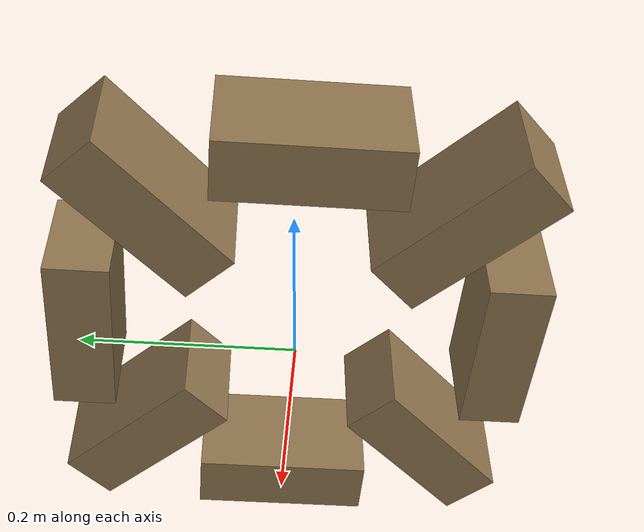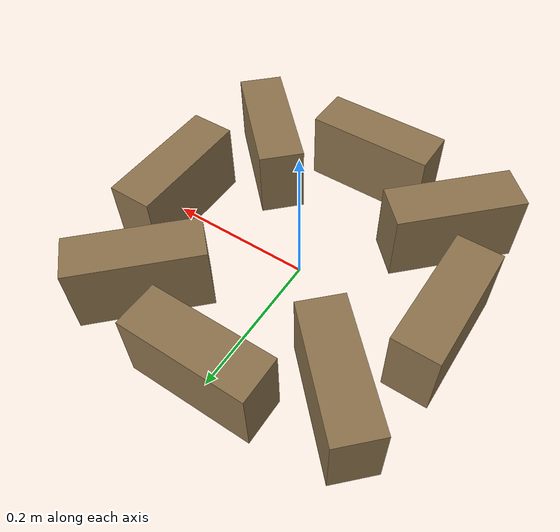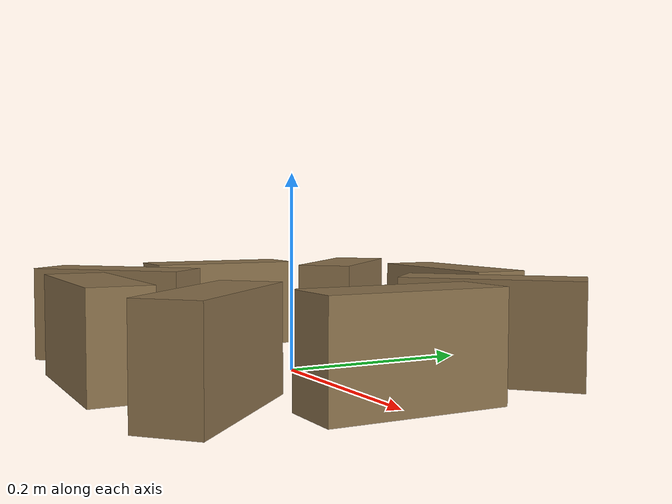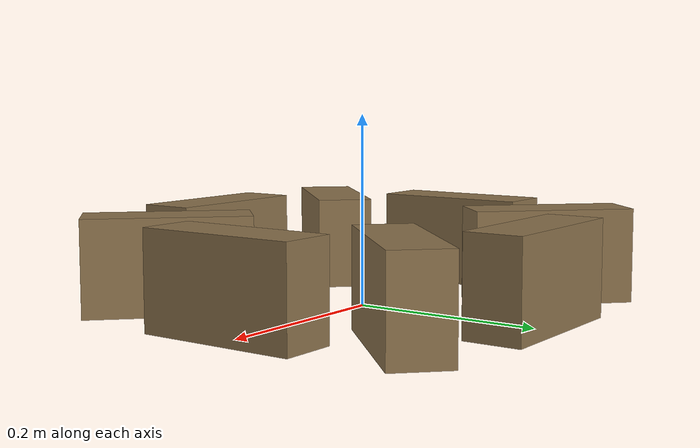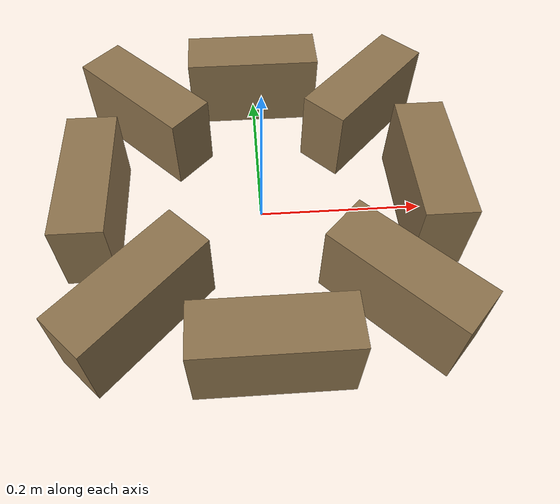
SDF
<?xml version="1.0" ?>
<sdf version="1.8">
  <model name="crater">
    <static>true</static>

    <!-- Rim geometry: 8 boxes arranged in an octagon.
         Radius ~0.20m center-to-segment, box length ~0.17m to close gaps.
         Each segment: 0.17 x 0.06 x 0.10 (length x thickness x height) -->

    <!-- N  (0 deg) -->
    <link name="rim_0">
      <pose>0 0.20 0.05 0 0 0</pose>
      <visual name="v"><geometry><box><size>0.17 0.06 0.10</size></box></geometry>
        <material><ambient>0.50 0.42 0.28 1</ambient><diffuse>0.55 0.45 0.30 1</diffuse></material>
      </visual>
      <collision name="c"><geometry><box><size>0.17 0.06 0.10</size></box></geometry>
        <surface><friction><ode><mu>0.9</mu><mu2>0.9</mu2></ode></friction></surface>
      </collision>
    </link>

    <!-- NE (45 deg) -->
    <link name="rim_1">
      <pose>0.1414 0.1414 0.05 0 0 0.7854</pose>
      <visual name="v"><geometry><box><size>0.17 0.06 0.10</size></box></geometry>
        <material><ambient>0.50 0.42 0.28 1</ambient><diffuse>0.55 0.45 0.30 1</diffuse></material>
      </visual>
      <collision name="c"><geometry><box><size>0.17 0.06 0.10</size></box></geometry>
        <surface><friction><ode><mu>0.9</mu><mu2>0.9</mu2></ode></friction></surface>
      </collision>
    </link>

    <!-- E  (90 deg) -->
    <link name="rim_2">
      <pose>0.20 0 0.05 0 0 1.5708</pose>
      <visual name="v"><geometry><box><size>0.17 0.06 0.10</size></box></geometry>
        <material><ambient>0.50 0.42 0.28 1</ambient><diffuse>0.55 0.45 0.30 1</diffuse></material>
      </visual>
      <collision name="c"><geometry><box><size>0.17 0.06 0.10</size></box></geometry>
        <surface><friction><ode><mu>0.9</mu><mu2>0.9</mu2></ode></friction></surface>
      </collision>
    </link>

    <!-- SE (135 deg) -->
    <link name="rim_3">
      <pose>0.1414 -0.1414 0.05 0 0 2.3562</pose>
      <visual name="v"><geometry><box><size>0.17 0.06 0.10</size></box></geometry>
        <material><ambient>0.50 0.42 0.28 1</ambient><diffuse>0.55 0.45 0.30 1</diffuse></material>
      </visual>
      <collision name="c"><geometry><box><size>0.17 0.06 0.10</size></box></geometry>
        <surface><friction><ode><mu>0.9</mu><mu2>0.9</mu2></ode></friction></surface>
      </collision>
    </link>

    <!-- S  (180 deg) -->
    <link name="rim_4">
      <pose>0 -0.20 0.05 0 0 0</pose>
      <visual name="v"><geometry><box><size>0.17 0.06 0.10</size></box></geometry>
        <material><ambient>0.50 0.42 0.28 1</ambient><diffuse>0.55 0.45 0.30 1</diffuse></material>
      </visual>
      <collision name="c"><geometry><box><size>0.17 0.06 0.10</size></box></geometry>
        <surface><friction><ode><mu>0.9</mu><mu2>0.9</mu2></ode></friction></surface>
      </collision>
    </link>

    <!-- SW (225 deg) -->
    <link name="rim_5">
      <pose>-0.1414 -0.1414 0.05 0 0 0.7854</pose>
      <visual name="v"><geometry><box><size>0.17 0.06 0.10</size></box></geometry>
        <material><ambient>0.50 0.42 0.28 1</ambient><diffuse>0.55 0.45 0.30 1</diffuse></material>
      </visual>
      <collision name="c"><geometry><box><size>0.17 0.06 0.10</size></box></geometry>
        <surface><friction><ode><mu>0.9</mu><mu2>0.9</mu2></ode></friction></surface>
      </collision>
    </link>

    <!-- W  (270 deg) -->
    <link name="rim_6">
      <pose>-0.20 0 0.05 0 0 1.5708</pose>
      <visual name="v"><geometry><box><size>0.17 0.06 0.10</size></box></geometry>
        <material><ambient>0.50 0.42 0.28 1</ambient><diffuse>0.55 0.45 0.30 1</diffuse></material>
      </visual>
      <collision name="c"><geometry><box><size>0.17 0.06 0.10</size></box></geometry>
        <surface><friction><ode><mu>0.9</mu><mu2>0.9</mu2></ode></friction></surface>
      </collision>
    </link>

    <!-- NW (315 deg) -->
    <link name="rim_7">
      <pose>-0.1414 0.1414 0.05 0 0 2.3562</pose>
      <visual name="v"><geometry><box><size>0.17 0.06 0.10</size></box></geometry>
        <material><ambient>0.50 0.42 0.28 1</ambient><diffuse>0.55 0.45 0.30 1</diffuse></material>
      </visual>
      <collision name="c"><geometry><box><size>0.17 0.06 0.10</size></box></geometry>
        <surface><friction><ode><mu>0.9</mu><mu2>0.9</mu2></ode></friction></surface>
      </collision>
    </link>
  </model>
</sdf>
